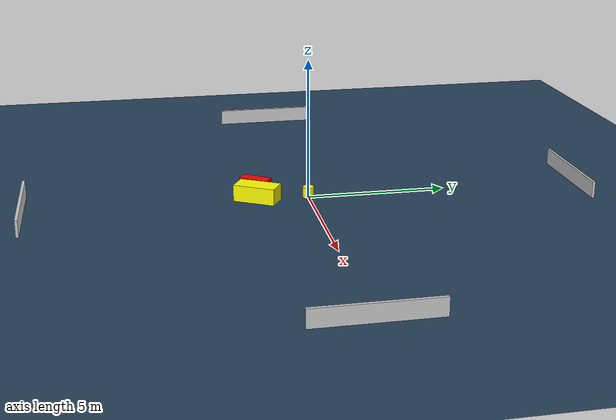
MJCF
<?xml version="1.0" ?>
<mujoco model="generated_environment">
  <option timestep="0.01" integrator="RK4" cone="elliptic"/>
  <default>
    <geom density="1"/>
  </default>
  <asset>
    <texture builtin="gradient" height="3072" name="skybox" rgb1="0.3 0.5 0.7" rgb2="0 0 0" type="skybox" width="512"/>
    <texture builtin="checker" height="300" name="groundplane" rgb1="0.2 0.3 0.4" rgb2="0.1 0.2 0.3" type="2d" width="300"/>
    <material name="groundplane" reflectance="0.2" texrepeat="5 5" texture="groundplane"/>
  </asset>
  <worldbody>
    <light dir="0 0 -1" directional="true" pos="0 0 1.5"/>
    <geom condim="3" friction="0.5 0.005 0.001" material="groundplane" name="floor" pos="0 0 0" size="0 0 0.05" type="plane"/>
    <body name="walls">
      <geom name="wall_1" condim="4" pos="-10.0 0.0 0.3" rgba="0.800000011920929 0.800000011920929 0.800000011920929 1.0" size="0.05 2.0 0.3" type="box"/>
      <geom name="wall_2" condim="4" pos="10.0 0.0 0.3" rgba="0.800000011920929 0.800000011920929 0.800000011920929 1.0" size="0.05 2.0 0.3" type="box"/>
      <geom name="wall_3" condim="4" pos="0.0 -10.0 0.3" rgba="0.800000011920929 0.800000011920929 0.800000011920929 1.0" size="2.0 0.05 0.3" type="box"/>
      <geom name="wall_4" condim="4" pos="0.0 10.0 0.3" rgba="0.800000011920929 0.800000011920929 0.800000011920929 1.0" size="2.0 0.05 0.3" type="box"/>
    </body>
    <body name="robot">
      <joint name="joint_x" type="slide" pos="0 0 0" axis="1 0 0"/>
      <joint name="joint_y" type="slide" pos="0 0 0" axis="0 1 0"/>
      <geom name="robot" type="cylinder" pos="0.0 0.0 0.2" size="0.2 0.2 0.0" mass="5.0" friction="1.0 0.005 0.0001" condim="4" rgba="1.0 1.0 0.0 1.0"/>
    </body>
    <body name="obstacle_1_movable">
      <geom name="obstacle_1_movable" condim="4" pos="-0.023907429261030202 -1.8435119158274138 0.3" euler="0 0 149.90358488898403" friction="0.0 0.005 0.001" rgba="1.0 1.0 0.0 1.0" size="0.3655045958487369 0.7672654052602361 0.3" type="box" mass="0.1"/>
      <joint type="free"/>
    </body>
    <body name="obstacle_2_static">
      <geom name="obstacle_2_static" condim="4" pos="-0.7282163103651597 -1.8096748243845888 0.3" euler="0 0 326.474681218188" friction="0.0 0.005 0.001" rgba="1.0 0.0 0.0 1.0" size="0.22612840124305017 0.5377400294058684 0.3" type="box"/>
    </body>
  </worldbody>
  <actuator>
    <motor name="actuator_x" joint="joint_x" gear="1" ctrlrange="-1 1"/>
    <motor name="actuator_y" joint="joint_y" gear="1" ctrlrange="-1 1"/>
  </actuator>
</mujoco>
